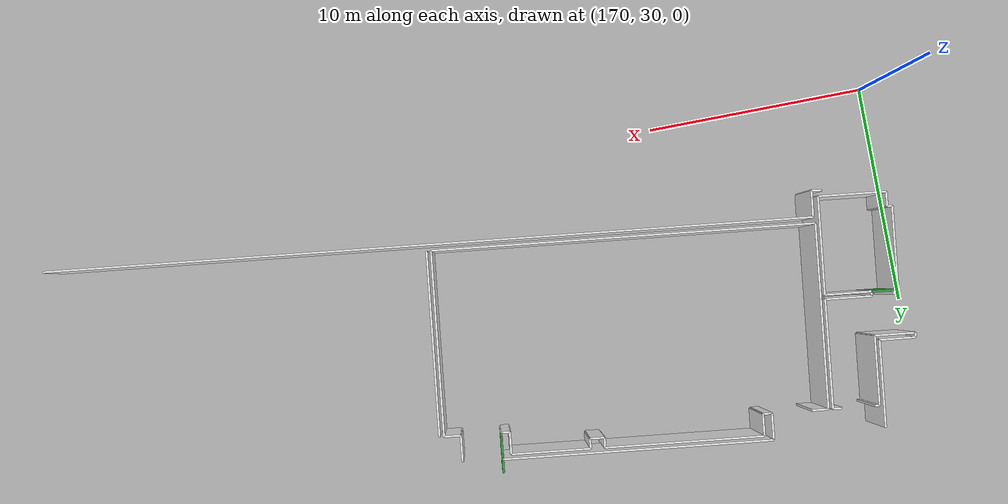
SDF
<sdf version="1.6">
 <world name="default">
  <model name="wall_189.7_43.2_1.5">
   <static>true</static>
   <pose>189.70999999984633 43.1999999997206 1.5 0 0 1.4491773036638287</pose>
   <link name="link">
    <visual name="visual">
     <geometry><box><size>1.8133946065913809 0.1 3</size></box></geometry>
     <material>
      <script><uri>file://media/materials/scripts/gazebo.material</uri><name>Gazebo/Green</name></script>
     </material>
    </visual>
    <collision name="collision"><geometry><box><size>1.8133946065913809 0.1 3</size></box></geometry></collision>
   </link>
  </model>
  <model name="wall_171.6_39.3_1.5">
   <static>true</static>
   <pose>171.56500000000233 39.300000000046566 1.5 0 0 -0.12062366822892527</pose>
   <link name="link">
    <visual name="visual">
     <geometry><box><size>0.9972462082638486 0.1 3</size></box></geometry>
     <material>
      <script><uri>file://media/materials/scripts/gazebo.material</uri><name>Gazebo/Green</name></script>
     </material>
    </visual>
    <collision name="collision"><geometry><box><size>0.9972462082638486 0.1 3</size></box></geometry></collision>
   </link>
  </model>
  <model name="wall_191.5_42.7_1.5">
   <static>true</static>
   <pose>191.47000000000116 42.675000000046566 1.5 0 0 -1.6879050713305428</pose>
   <link name="link">
    <visual name="visual">
     <geometry><box><size>1.1982069937429929 0.1 3</size></box></geometry>
     <material>
      <script><uri>file://media/materials/scripts/gazebo.material</uri><name>Gazebo/White</name></script>
     </material>
    </visual>
    <collision name="collision"><geometry><box><size>1.1982069937429929 0.1 3</size></box></geometry></collision>
   </link>
  </model>
  <model name="wall_189.7_42.9_1.5">
   <static>true</static>
   <pose>189.67499999998836 42.89500000001863 1.5 0 0 1.445407206476848</pose>
   <link name="link">
    <visual name="visual">
     <geometry><box><size>1.199416525224772 0.1 3</size></box></geometry>
     <material>
      <script><uri>file://media/materials/scripts/gazebo.material</uri><name>Gazebo/White</name></script>
     </material>
    </visual>
    <collision name="collision"><geometry><box><size>1.199416525224772 0.1 3</size></box></geometry></collision>
   </link>
  </model>
  <model name="wall_183.7_44.2_1.5">
   <static>true</static>
   <pose>183.69000000000233 44.22000000020489 1.5 0 0 3.021708265311705</pose>
   <link name="link">
    <visual name="visual">
     <geometry><box><size>12.207620570765556 0.1 3</size></box></geometry>
     <material>
      <script><uri>file://media/materials/scripts/gazebo.material</uri><name>Gazebo/White</name></script>
     </material>
    </visual>
    <collision name="collision"><geometry><box><size>12.207620570765556 0.1 3</size></box></geometry></collision>
   </link>
  </model>
  <model name="wall_177.6_44.4_1.5">
   <static>true</static>
   <pose>177.55999999999767 44.35499999998137 1.5 0 0 -1.6879050713333807</pose>
   <link name="link">
    <visual name="visual">
     <geometry><box><size>1.1982069942122657 0.1 3</size></box></geometry>
     <material>
      <script><uri>file://media/materials/scripts/gazebo.material</uri><name>Gazebo/White</name></script>
     </material>
    </visual>
    <collision name="collision"><geometry><box><size>1.1982069942122657 0.1 3</size></box></geometry></collision>
   </link>
  </model>
  <model name="wall_172.4_43.4_1.5">
   <static>true</static>
   <pose>172.35500000001048 43.39500000001863 1.5 0 0 -1.69042694704516</pose>
   <link name="link">
    <visual name="visual">
     <geometry><box><size>3.938146772429098 0.1 3</size></box></geometry>
     <material>
      <script><uri>file://media/materials/scripts/gazebo.material</uri><name>Gazebo/White</name></script>
     </material>
    </visual>
    <collision name="collision"><geometry><box><size>3.938146772429098 0.1 3</size></box></geometry></collision>
   </link>
  </model>
  <model name="wall_171.3_41.5_1.5">
   <static>true</static>
   <pose>171.31500000000233 41.53499999991618 1.5 0 0 3.024123548711388</pose>
   <link name="link">
    <visual name="visual">
     <geometry><box><size>1.6211724152395952 0.1 3</size></box></geometry>
     <material>
      <script><uri>file://media/materials/scripts/gazebo.material</uri><name>Gazebo/White</name></script>
     </material>
    </visual>
    <collision name="collision"><geometry><box><size>1.6211724152395952 0.1 3</size></box></geometry></collision>
   </link>
  </model>
  <model name="wall_185.4_43.4_1.5">
   <static>true</static>
   <pose>185.40499999999884 43.359999999869615 1.5 0 0 3.0191315960530236</pose>
   <link name="link">
    <visual name="visual">
     <geometry><box><size>0.6549045731757559 0.1 3</size></box></geometry>
     <material>
      <script><uri>file://media/materials/scripts/gazebo.material</uri><name>Gazebo/White</name></script>
     </material>
    </visual>
    <collision name="collision"><geometry><box><size>0.6549045731757559 0.1 3</size></box></geometry></collision>
   </link>
  </model>
  <model name="wall_185.1_43.6_1.5">
   <static>true</static>
   <pose>185.11000000001513 43.625 1.5 0 0 1.4382447945575316</pose>
   <link name="link">
    <visual name="visual">
     <geometry><box><size>0.45398237869696956 0.1 3</size></box></geometry>
     <material>
      <script><uri>file://media/materials/scripts/gazebo.material</uri><name>Gazebo/White</name></script>
     </material>
    </visual>
    <collision name="collision"><geometry><box><size>0.45398237869696956 0.1 3</size></box></geometry></collision>
   </link>
  </model>
  <model name="wall_181.6_44.3_1.5">
   <static>true</static>
   <pose>181.57500000001164 44.2750000001397 1.5 0 0 3.0229380636870755</pose>
   <link name="link">
    <visual name="visual">
     <geometry><box><size>7.180487448650316 0.1 3</size></box></geometry>
     <material>
      <script><uri>file://media/materials/scripts/gazebo.material</uri><name>Gazebo/White</name></script>
     </material>
    </visual>
    <collision name="collision"><geometry><box><size>7.180487448650316 0.1 3</size></box></geometry></collision>
   </link>
  </model>
  <model name="wall_178.0_44.2_1.5">
   <static>true</static>
   <pose>177.95000000001164 44.205000000074506 1.5 0 0 -1.6914199953433933</pose>
   <link name="link">
    <visual name="visual">
     <geometry><box><size>0.9972462085370126 0.1 3</size></box></geometry>
     <material>
      <script><uri>file://media/materials/scripts/gazebo.material</uri><name>Gazebo/White</name></script>
     </material>
    </visual>
    <collision name="collision"><geometry><box><size>0.9972462085370126 0.1 3</size></box></geometry></collision>
   </link>
  </model>
  <model name="wall_177.7_43.7_1.5">
   <static>true</static>
   <pose>177.69000000000233 43.734999999869615 1.5 0 0 3.017237659508693</pose>
   <link name="link">
    <visual name="visual">
     <geometry><box><size>0.4031128874149275 0.1 3</size></box></geometry>
     <material>
      <script><uri>file://media/materials/scripts/gazebo.material</uri><name>Gazebo/White</name></script>
     </material>
    </visual>
    <collision name="collision"><geometry><box><size>0.4031128874149275 0.1 3</size></box></geometry></collision>
   </link>
  </model>
  <model name="wall_175.3_44.0_1.5">
   <static>true</static>
   <pose>175.3300000000163 44.015000000130385 1.5 0 0 3.0205654339775116</pose>
   <link name="link">
    <visual name="visual">
     <geometry><box><size>0.7454528824542799 0.1 3</size></box></geometry>
     <material>
      <script><uri>file://media/materials/scripts/gazebo.material</uri><name>Gazebo/White</name></script>
     </material>
    </visual>
    <collision name="collision"><geometry><box><size>0.7454528824542799 0.1 3</size></box></geometry></collision>
   </link>
  </model>
  <model name="wall_174.5_39.9_1.5">
   <static>true</static>
   <pose>174.4550000000163 39.90500000002794 1.5 0 0 -1.6917434222515764</pose>
   <link name="link">
    <visual name="visual">
     <geometry><box><size>8.371152847783126 0.1 3</size></box></geometry>
     <material>
      <script><uri>file://media/materials/scripts/gazebo.material</uri><name>Gazebo/White</name></script>
     </material>
    </visual>
    <collision name="collision"><geometry><box><size>8.371152847783126 0.1 3</size></box></geometry></collision>
   </link>
  </model>
  <model name="wall_182.5_34.7_1.5">
   <static>true</static>
   <pose>182.5450000000128 34.71500000008382 1.5 0 0 -0.11984180790102025</pose>
   <link name="link">
    <visual name="visual">
     <geometry><box><size>17.31418493603976 0.1 3</size></box></geometry>
     <material>
      <script><uri>file://media/materials/scripts/gazebo.material</uri><name>Gazebo/White</name></script>
     </material>
    </visual>
    <collision name="collision"><geometry><box><size>17.31418493603976 0.1 3</size></box></geometry></collision>
   </link>
  </model>
  <model name="wall_191.6_37.8_1.5">
   <static>true</static>
   <pose>191.64500000001863 37.83500000019558 1.5 0 0 1.449849231338217</pose>
   <link name="link">
    <visual name="visual">
     <geometry><box><size>8.371152847783126 0.1 3</size></box></geometry>
     <material>
      <script><uri>file://media/materials/scripts/gazebo.material</uri><name>Gazebo/White</name></script>
     </material>
    </visual>
    <collision name="collision"><geometry><box><size>8.371152847783126 0.1 3</size></box></geometry></collision>
   </link>
  </model>
  <model name="wall_191.8_42.0_1.5">
   <static>true</static>
   <pose>191.77500000002328 42.03500000014901 1.5 0 0 3.0221637277673166</pose>
   <link name="link">
    <visual name="visual">
     <geometry><box><size>0.7553806987030962 0.1 3</size></box></geometry>
     <material>
      <script><uri>file://media/materials/scripts/gazebo.material</uri><name>Gazebo/White</name></script>
     </material>
    </visual>
    <collision name="collision"><geometry><box><size>0.7553806987030962 0.1 3</size></box></geometry></collision>
   </link>
  </model>
  <model name="wall_189.4_42.3_1.5">
   <static>true</static>
   <pose>189.40499999999884 42.31999999983236 1.5 0 0 3.039385935376501</pose>
   <link name="link">
    <visual name="visual">
     <geometry><box><size>0.3920459156380471 0.1 3</size></box></geometry>
     <material>
      <script><uri>file://media/materials/scripts/gazebo.material</uri><name>Gazebo/White</name></script>
     </material>
    </visual>
    <collision name="collision"><geometry><box><size>0.3920459156380471 0.1 3</size></box></geometry></collision>
   </link>
  </model>
  <model name="wall_189.3_42.8_1.5">
   <static>true</static>
   <pose>189.27000000001863 42.83999999985099 1.5 0 0 1.4513674007811488</pose>
   <link name="link">
    <visual name="visual">
     <geometry><box><size>1.0071742649605788 0.1 3</size></box></geometry>
     <material>
      <script><uri>file://media/materials/scripts/gazebo.material</uri><name>Gazebo/White</name></script>
     </material>
    </visual>
    <collision name="collision"><geometry><box><size>1.0071742649605788 0.1 3</size></box></geometry></collision>
   </link>
  </model>
  <model name="wall_187.6_43.6_1.5">
   <static>true</static>
   <pose>187.55500000002212 43.55499999993481 1.5 0 0 3.02105311047783</pose>
   <link name="link">
    <visual name="visual">
     <geometry><box><size>3.5759474269152105 0.1 3</size></box></geometry>
     <material>
      <script><uri>file://media/materials/scripts/gazebo.material</uri><name>Gazebo/White</name></script>
     </material>
    </visual>
    <collision name="collision"><geometry><box><size>3.5759474269152105 0.1 3</size></box></geometry></collision>
   </link>
  </model>
  <model name="wall_185.8_43.5_1.5">
   <static>true</static>
   <pose>185.75500000000466 43.544999999925494 1.5 0 0 -1.6814535480255803</pose>
   <link name="link">
    <visual name="visual">
     <geometry><box><size>0.45276925709713844 0.1 3</size></box></geometry>
     <material>
      <script><uri>file://media/materials/scripts/gazebo.material</uri><name>Gazebo/White</name></script>
     </material>
    </visual>
    <collision name="collision"><geometry><box><size>0.45276925709713844 0.1 3</size></box></geometry></collision>
   </link>
  </model>
  <model name="wall_191.8_37.8_1.5">
   <static>true</static>
   <pose>191.84500000000116 37.81500000017695 1.5 0 0 1.4498492313451194</pose>
   <link name="link">
    <visual name="visual">
     <geometry><box><size>8.371152847776102 0.1 3</size></box></geometry>
     <material>
      <script><uri>file://media/materials/scripts/gazebo.material</uri><name>Gazebo/White</name></script>
     </material>
    </visual>
    <collision name="collision"><geometry><box><size>8.371152847776102 0.1 3</size></box></geometry></collision>
   </link>
  </model>
  <model name="wall_171.0_39.4_1.5">
   <static>true</static>
   <pose>170.97000000000116 39.36999999987893 1.5 0 0 -0.09966865257760905</pose>
   <link name="link">
    <visual name="visual">
     <geometry><box><size>0.20099751243585498 0.1 3</size></box></geometry>
     <material>
      <script><uri>file://media/materials/scripts/gazebo.material</uri><name>Gazebo/White</name></script>
     </material>
    </visual>
    <collision name="collision"><geometry><box><size>0.20099751243585498 0.1 3</size></box></geometry></collision>
   </link>
  </model>
  <model name="wall_173.1_39.1_1.5">
   <static>true</static>
   <pose>173.10500000001048 39.11500000022352 1.5 0 0 -0.11905156754423915</pose>
   <link name="link">
    <visual name="visual">
     <geometry><box><size>2.1048990474859015 0.1 3</size></box></geometry>
     <material>
      <script><uri>file://media/materials/scripts/gazebo.material</uri><name>Gazebo/White</name></script>
     </material>
    </visual>
    <collision name="collision"><geometry><box><size>2.1048990474859015 0.1 3</size></box></geometry></collision>
   </link>
  </model>
  <model name="wall_173.9_36.8_1.5">
   <static>true</static>
   <pose>173.88000000000466 36.79000000003725 1.5 0 0 -1.6929129367177644</pose>
   <link name="link">
    <visual name="visual">
     <geometry><box><size>4.43301252009494 0.1 3</size></box></geometry>
     <material>
      <script><uri>file://media/materials/scripts/gazebo.material</uri><name>Gazebo/White</name></script>
     </material>
    </visual>
    <collision name="collision"><geometry><box><size>4.43301252009494 0.1 3</size></box></geometry></collision>
   </link>
  </model>
  <model name="wall_172.1_34.8_1.5">
   <static>true</static>
   <pose>172.08499999999185 34.77499999990687 1.5 0 0 3.020871070550642</pose>
   <link name="link">
    <visual name="visual">
     <geometry><box><size>3.0723606559145504 0.1 3</size></box></geometry>
     <material>
      <script><uri>file://media/materials/scripts/gazebo.material</uri><name>Gazebo/White</name></script>
     </material>
    </visual>
    <collision name="collision"><geometry><box><size>3.0723606559145504 0.1 3</size></box></geometry></collision>
   </link>
  </model>
  <model name="wall_170.6_35.3_1.5">
   <static>true</static>
   <pose>170.60000000000582 35.28000000002794 1.5 0 0 1.446441332248135</pose>
   <link name="link">
    <visual name="visual">
     <geometry><box><size>0.6449806199952839 0.1 3</size></box></geometry>
     <material>
      <script><uri>file://media/materials/scripts/gazebo.material</uri><name>Gazebo/White</name></script>
     </material>
    </visual>
    <collision name="collision"><geometry><box><size>0.6449806199952839 0.1 3</size></box></geometry></collision>
   </link>
  </model>
  <model name="wall_170.5_35.6_1.5">
   <static>true</static>
   <pose>170.52999999999884 35.61499999999069 1.5 0 0 3.006064940537032</pose>
   <link name="link">
    <visual name="visual">
     <geometry><box><size>0.22203603311405212 0.1 3</size></box></geometry>
     <material>
      <script><uri>file://media/materials/scripts/gazebo.material</uri><name>Gazebo/White</name></script>
     </material>
    </visual>
    <collision name="collision"><geometry><box><size>0.22203603311405212 0.1 3</size></box></geometry></collision>
   </link>
  </model>
  <model name="wall_170.6_37.5_1.5">
   <static>true</static>
   <pose>170.64499999998952 37.50499999988824 1.5 0 0 1.4513674007734978</pose>
   <link name="link">
    <visual name="visual">
     <geometry><box><size>3.7769034936056385 0.1 3</size></box></geometry>
     <material>
      <script><uri>file://media/materials/scripts/gazebo.material</uri><name>Gazebo/White</name></script>
     </material>
    </visual>
    <collision name="collision"><geometry><box><size>3.7769034936056385 0.1 3</size></box></geometry></collision>
   </link>
  </model>
  <model name="wall_170.5_41.5_1.5">
   <static>true</static>
   <pose>170.49499999999534 41.53000000002794 1.5 0 0 -1.7196862747459547</pose>
   <link name="link">
    <visual name="visual">
     <geometry><box><size>0.2022374838894058 0.1 3</size></box></geometry>
     <material>
      <script><uri>file://media/materials/scripts/gazebo.material</uri><name>Gazebo/White</name></script>
     </material>
    </visual>
    <collision name="collision"><geometry><box><size>0.2022374838894058 0.1 3</size></box></geometry></collision>
   </link>
  </model>
  <model name="wall_171.4_41.3_1.5">
   <static>true</static>
   <pose>171.3849999999802 41.32000000006519 1.5 0 0 -0.1209536472312257</pose>
   <link name="link">
    <visual name="visual">
     <geometry><box><size>1.823321145624578 0.1 3</size></box></geometry>
     <material>
      <script><uri>file://media/materials/scripts/gazebo.material</uri><name>Gazebo/White</name></script>
     </material>
    </visual>
    <collision name="collision"><geometry><box><size>1.823321145624578 0.1 3</size></box></geometry></collision>
   </link>
  </model>
  <model name="wall_172.5_42.8_1.5">
   <static>true</static>
   <pose>172.47999999998137 42.77000000001863 1.5 0 0 1.4495983856926966</pose>
   <link name="link">
    <visual name="visual">
     <geometry><box><size>3.1430558379864832 0.1 3</size></box></geometry>
     <material>
      <script><uri>file://media/materials/scripts/gazebo.material</uri><name>Gazebo/White</name></script>
     </material>
    </visual>
    <collision name="collision"><geometry><box><size>3.1430558379864832 0.1 3</size></box></geometry></collision>
   </link>
  </model>
  <model name="wall_172.8_44.3_1.5">
   <static>true</static>
   <pose>172.76999999998952 44.32000000006519 1.5 0 0 -0.09966865257760905</pose>
   <link name="link">
    <visual name="visual">
     <geometry><box><size>0.20099751243585498 0.1 3</size></box></geometry>
     <material>
      <script><uri>file://media/materials/scripts/gazebo.material</uri><name>Gazebo/White</name></script>
     </material>
    </visual>
    <collision name="collision"><geometry><box><size>0.20099751243585498 0.1 3</size></box></geometry></collision>
   </link>
  </model>
  <model name="wall_174.6_44.1_1.5">
   <static>true</static>
   <pose>174.55999999999767 44.10499999998137 1.5 0 0 -0.12435499408110015</pose>
   <link name="link">
    <visual name="visual">
     <geometry><box><size>0.4031128874149275 0.1 3</size></box></geometry>
     <material>
      <script><uri>file://media/materials/scripts/gazebo.material</uri><name>Gazebo/White</name></script>
     </material>
    </visual>
    <collision name="collision"><geometry><box><size>0.4031128874149275 0.1 3</size></box></geometry></collision>
   </link>
  </model>
  <model name="wall_174.5_41.6_1.5">
   <static>true</static>
   <pose>174.4649999999965 41.63500000000931 1.5 0 0 -1.690870309974588</pose>
   <link name="link">
    <visual name="visual">
     <geometry><box><size>4.925464445238173 0.1 3</size></box></geometry>
     <material>
      <script><uri>file://media/materials/scripts/gazebo.material</uri><name>Gazebo/White</name></script>
     </material>
    </visual>
    <collision name="collision"><geometry><box><size>4.925464445238173 0.1 3</size></box></geometry></collision>
   </link>
  </model>
  <model name="wall_173.1_39.3_1.5">
   <static>true</static>
   <pose>173.125 39.31499999994412 1.5 0 0 3.0225410860422697</pose>
   <link name="link">
    <visual name="visual">
     <geometry><box><size>2.104899047428106 0.1 3</size></box></geometry>
     <material>
      <script><uri>file://media/materials/scripts/gazebo.material</uri><name>Gazebo/White</name></script>
     </material>
    </visual>
    <collision name="collision"><geometry><box><size>2.104899047428106 0.1 3</size></box></geometry></collision>
   </link>
  </model>
  <model name="wall_172.1_39.3_1.5">
   <static>true</static>
   <pose>172.07000000000698 39.34000000008382 1.5 0 0 -1.670464979516584</pose>
   <link name="link">
    <visual name="visual">
     <geometry><box><size>0.20099751214626105 0.1 3</size></box></geometry>
     <material>
      <script><uri>file://media/materials/scripts/gazebo.material</uri><name>Gazebo/White</name></script>
     </material>
    </visual>
    <collision name="collision"><geometry><box><size>0.20099751214626105 0.1 3</size></box></geometry></collision>
   </link>
  </model>
  <model name="wall_171.1_39.5_1.5">
   <static>true</static>
   <pose>171.0800000000163 39.45999999996275 1.5 0 0 1.4711276743037347</pose>
   <link name="link">
    <visual name="visual">
     <geometry><box><size>0.20099751260961132 0.1 3</size></box></geometry>
     <material>
      <script><uri>file://media/materials/scripts/gazebo.material</uri><name>Gazebo/White</name></script>
     </material>
    </visual>
    <collision name="collision"><geometry><box><size>0.20099751260961132 0.1 3</size></box></geometry></collision>
   </link>
  </model>
  <model name="wall_173.6_34.3_1.5">
   <static>true</static>
   <pose>173.6149999999907 34.31499999994412 1.5 0 0 -0.14784936588774888</pose>
   <link name="link">
    <visual name="visual">
     <geometry><box><size>0.4751841748369362 0.1 3</size></box></geometry>
     <material>
      <script><uri>file://media/materials/scripts/gazebo.material</uri><name>Gazebo/White</name></script>
     </material>
    </visual>
    <collision name="collision"><geometry><box><size>0.4751841748369362 0.1 3</size></box></geometry></collision>
   </link>
  </model>
  <model name="wall_173.9_34.9_1.5">
   <static>true</static>
   <pose>173.92499999998836 34.86999999987893 1.5 0 0 1.4443558295348613</pose>
   <link name="link">
    <visual name="visual">
     <geometry><box><size>1.1894956916284358 0.1 3</size></box></geometry>
     <material>
      <script><uri>file://media/materials/scripts/gazebo.material</uri><name>Gazebo/White</name></script>
     </material>
    </visual>
    <collision name="collision"><geometry><box><size>1.1894956916284358 0.1 3</size></box></geometry></collision>
   </link>
  </model>
  <model name="wall_191.2_33.4_1.5">
   <static>true</static>
   <pose>191.20999999999185 33.389999999897555 1.5 0 0 -0.11970386529944234</pose>
   <link name="link">
    <visual name="visual">
     <geometry><box><size>34.668083304387594 0.1 3</size></box></geometry>
     <material>
      <script><uri>file://media/materials/scripts/gazebo.material</uri><name>Gazebo/White</name></script>
     </material>
    </visual>
    <collision name="collision"><geometry><box><size>34.668083304387594 0.1 3</size></box></geometry></collision>
   </link>
  </model>
 </world>
</sdf>
